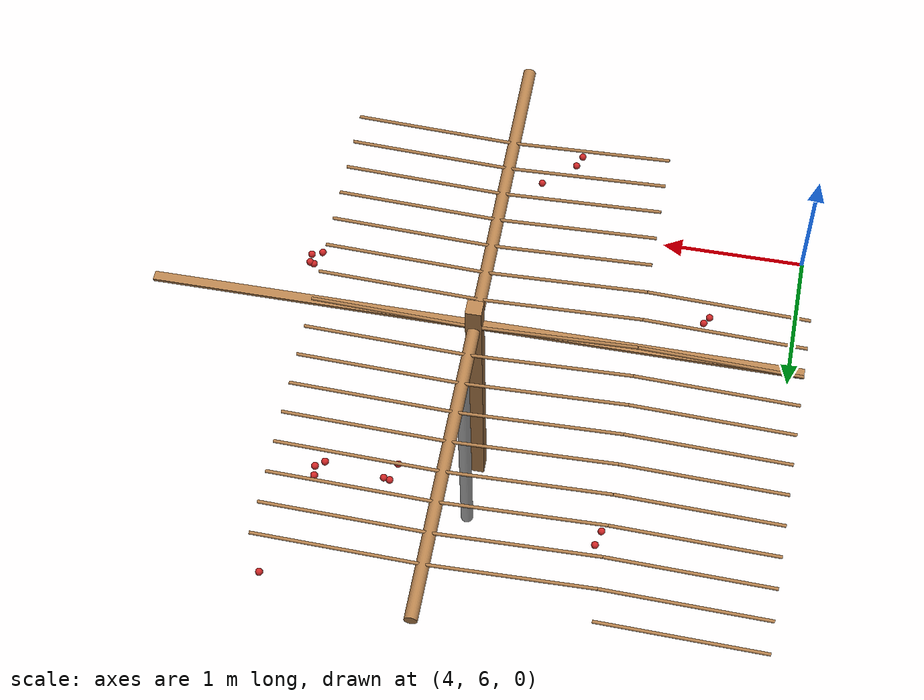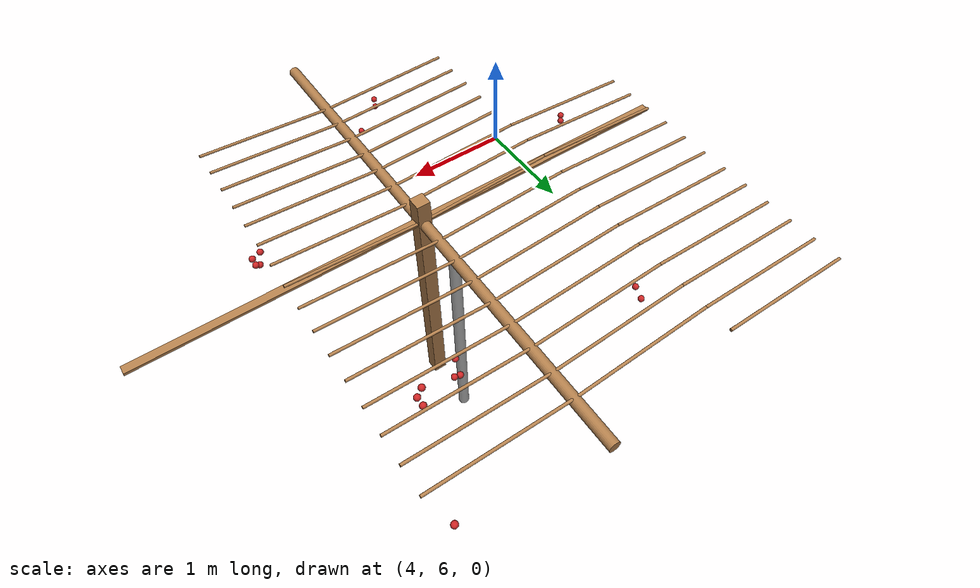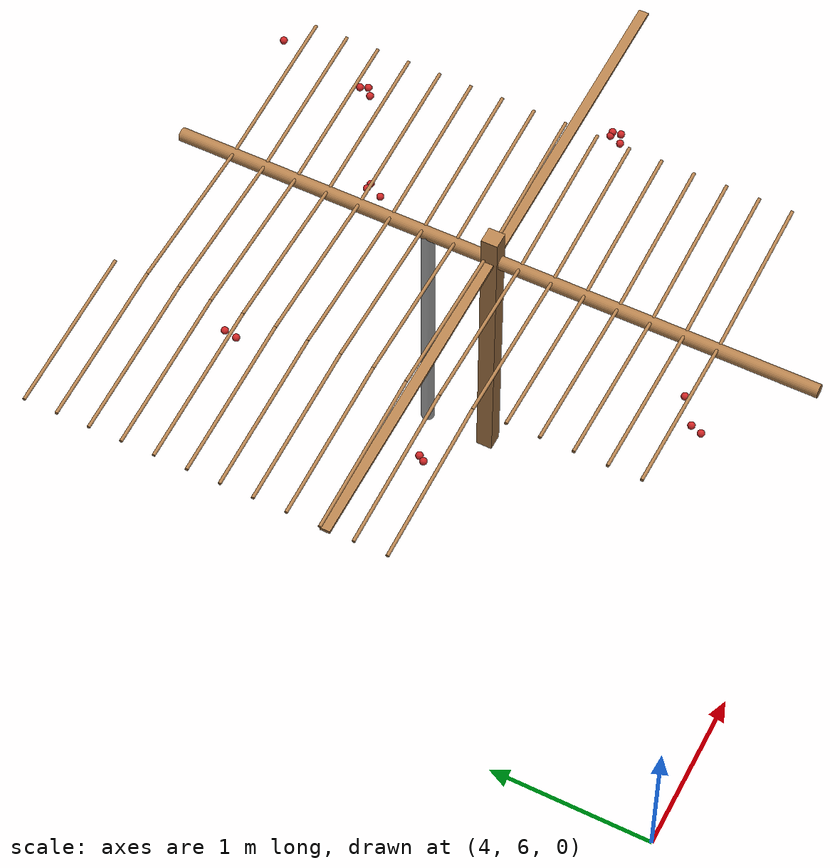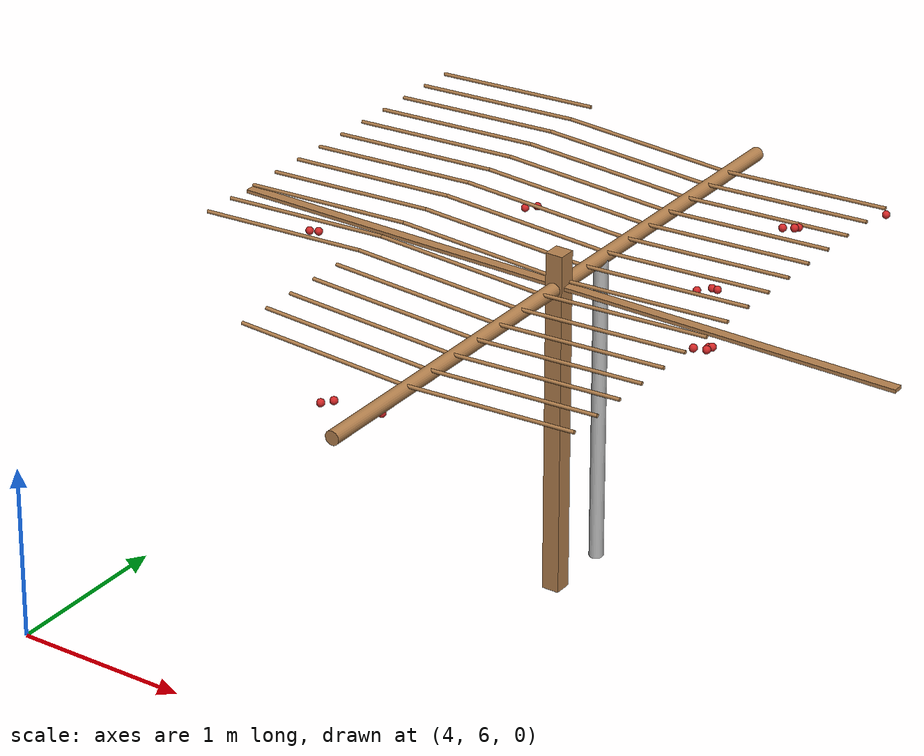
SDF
<sdf version="1.4">
 <model name="pergola">
  <include><name>post_37</name><pose>6.0 8.0 0 0 0 0</pose><uri>model://post</uri></include>
  <link name="beam_26">
   <pose>5.0 8.0 1.81 0 0 0</pose>
   <collision name="collision"><geometry><box><size>2.0 0.06 0.02</size></box></geometry></collision>
   <visual name="visual">
    <geometry><box><size>2.0 0.06 0.02</size></box></geometry>
    <material><script><name>Gazebo/Wood</name></script></material>
   </visual>
   <inertial>
    <mass>5</mass>
    <inertia>
     <ixx>0.0016666666666666668</ixx>
     <ixy>0.0</ixy>
     <ixz>0.0</ixz>
     <iyy>1.6681666666666664</iyy>
     <iyz>0.0</iyz>
     <izz>1.6668333333333332</izz>
    </inertia>
   </inertial>
  </link>
  <link name="beam_37">
   <pose>7.0 8.0 1.81 0 0 0</pose>
   <collision name="collision"><geometry><box><size>2.0 0.06 0.02</size></box></geometry></collision>
   <visual name="visual">
    <geometry><box><size>2.0 0.06 0.02</size></box></geometry>
    <material><script><name>Gazebo/Wood</name></script></material>
   </visual>
   <inertial>
    <mass>5</mass>
    <inertia>
     <ixx>0.0016666666666666668</ixx>
     <ixy>0.0</ixy>
     <ixz>0.0</ixz>
     <iyy>1.6681666666666664</iyy>
     <iyz>0.0</iyz>
     <izz>1.6668333333333332</izz>
    </inertia>
   </inertial>
  </link>
  <include><name>tree_34</name><pose>6.0 8.4 0 0 0 0</pose><uri>model://tree_trunk</uri></include>
  <link name="baseBranch_33">
   <pose>6.0 7.0 1.8 1.5707963267948966 0 0</pose>
   <collision name="collision">
    <geometry><cylinder><radius>0.04</radius><length>1.94</length></cylinder></geometry>
   </collision>
   <visual name="visual">
    <geometry><cylinder><radius>0.04</radius><length>1.94</length></cylinder></geometry>
    <material><script><name>Gazebo/WoodFloor</name></script></material>
   </visual>
   <inertial>
    <mass>10</mass>
    <inertia>
     <ixx>3.140333333333333</ixx>
     <ixy>0.0</ixy>
     <ixz>0.0</ixz>
     <iyy>3.140333333333333</iyy>
     <iyz>0.0</iyz>
     <izz>0.008</izz>
    </inertia>
   </inertial>
  </link>
  <link name="baseBranch_34">
   <pose>6.0 9.0 1.8 1.5707963267948966 0 0</pose>
   <collision name="collision">
    <geometry><cylinder><radius>0.04</radius><length>1.94</length></cylinder></geometry>
   </collision>
   <visual name="visual">
    <geometry><cylinder><radius>0.04</radius><length>1.94</length></cylinder></geometry>
    <material><script><name>Gazebo/WoodFloor</name></script></material>
   </visual>
   <inertial>
    <mass>10</mass>
    <inertia>
     <ixx>3.140333333333333</ixx>
     <ixy>0.0</ixy>
     <ixz>0.0</ixz>
     <iyy>3.140333333333333</iyy>
     <iyz>0.0</iyz>
     <izz>0.008</izz>
    </inertia>
   </inertial>
  </link>
  <link name="vine_467">
   <pose>5.5 6.630000000000001 1.85 0 -1.5208379310729538 0</pose>
   <collision name="collision">
    <geometry><cylinder><radius>0.01</radius><length>1.0012492197250393</length></cylinder></geometry>
   </collision>
   <visual name="visual">
    <geometry><cylinder><radius>0.01</radius><length>1.0012492197250393</length></cylinder></geometry>
    <material><script><name>Gazebo/WoodFloor</name></script></material>
   </visual>
   <inertial>
    <mass>5</mass>
    <inertia>
     <ixx>0.41783333333333345</ixx>
     <ixy>0.0</ixy>
     <ixz>0.0</ixz>
     <iyy>0.41783333333333345</iyy>
     <iyz>0.0</iyz>
     <izz>0.00025</izz>
    </inertia>
   </inertial>
  </link>
  <link name="vine_469">
   <pose>5.5 6.830000000000001 1.85 0 -1.5208379310729538 0</pose>
   <collision name="collision">
    <geometry><cylinder><radius>0.01</radius><length>1.0012492197250393</length></cylinder></geometry>
   </collision>
   <visual name="visual">
    <geometry><cylinder><radius>0.01</radius><length>1.0012492197250393</length></cylinder></geometry>
    <material><script><name>Gazebo/WoodFloor</name></script></material>
   </visual>
   <inertial>
    <mass>5</mass>
    <inertia>
     <ixx>0.41783333333333345</ixx>
     <ixy>0.0</ixy>
     <ixz>0.0</ixz>
     <iyy>0.41783333333333345</iyy>
     <iyz>0.0</iyz>
     <izz>0.00025</izz>
    </inertia>
   </inertial>
  </link>
  <link name="vine_471">
   <pose>5.5 7.03 1.85 0 -1.5208379310729538 0</pose>
   <collision name="collision">
    <geometry><cylinder><radius>0.01</radius><length>1.0012492197250393</length></cylinder></geometry>
   </collision>
   <visual name="visual">
    <geometry><cylinder><radius>0.01</radius><length>1.0012492197250393</length></cylinder></geometry>
    <material><script><name>Gazebo/WoodFloor</name></script></material>
   </visual>
   <inertial>
    <mass>5</mass>
    <inertia>
     <ixx>0.41783333333333345</ixx>
     <ixy>0.0</ixy>
     <ixz>0.0</ixz>
     <iyy>0.41783333333333345</iyy>
     <iyz>0.0</iyz>
     <izz>0.00025</izz>
    </inertia>
   </inertial>
  </link>
  <link name="vine_473">
   <pose>5.5 7.23 1.85 0 -1.5208379310729538 0</pose>
   <collision name="collision">
    <geometry><cylinder><radius>0.01</radius><length>1.0012492197250393</length></cylinder></geometry>
   </collision>
   <visual name="visual">
    <geometry><cylinder><radius>0.01</radius><length>1.0012492197250393</length></cylinder></geometry>
    <material><script><name>Gazebo/WoodFloor</name></script></material>
   </visual>
   <inertial>
    <mass>5</mass>
    <inertia>
     <ixx>0.41783333333333345</ixx>
     <ixy>0.0</ixy>
     <ixz>0.0</ixz>
     <iyy>0.41783333333333345</iyy>
     <iyz>0.0</iyz>
     <izz>0.00025</izz>
    </inertia>
   </inertial>
  </link>
  <link name="vine_475">
   <pose>5.5 7.430000000000001 1.85 0 -1.5208379310729538 0</pose>
   <collision name="collision">
    <geometry><cylinder><radius>0.01</radius><length>1.0012492197250393</length></cylinder></geometry>
   </collision>
   <visual name="visual">
    <geometry><cylinder><radius>0.01</radius><length>1.0012492197250393</length></cylinder></geometry>
    <material><script><name>Gazebo/WoodFloor</name></script></material>
   </visual>
   <inertial>
    <mass>5</mass>
    <inertia>
     <ixx>0.41783333333333345</ixx>
     <ixy>0.0</ixy>
     <ixz>0.0</ixz>
     <iyy>0.41783333333333345</iyy>
     <iyz>0.0</iyz>
     <izz>0.00025</izz>
    </inertia>
   </inertial>
  </link>
  <link name="vine_476">
   <pose>4.5 7.630000000000001 1.85 0 1.5208379310729538 0</pose>
   <collision name="collision">
    <geometry><cylinder><radius>0.01</radius><length>1.0012492197250393</length></cylinder></geometry>
   </collision>
   <visual name="visual">
    <geometry><cylinder><radius>0.01</radius><length>1.0012492197250393</length></cylinder></geometry>
    <material><script><name>Gazebo/WoodFloor</name></script></material>
   </visual>
   <inertial>
    <mass>5</mass>
    <inertia>
     <ixx>0.41783333333333345</ixx>
     <ixy>0.0</ixy>
     <ixz>0.0</ixz>
     <iyy>0.41783333333333345</iyy>
     <iyz>0.0</iyz>
     <izz>0.00025</izz>
    </inertia>
   </inertial>
  </link>
  <link name="vine_477">
   <pose>5.5 7.630000000000001 1.85 0 -1.5208379310729538 0</pose>
   <collision name="collision">
    <geometry><cylinder><radius>0.01</radius><length>1.0012492197250393</length></cylinder></geometry>
   </collision>
   <visual name="visual">
    <geometry><cylinder><radius>0.01</radius><length>1.0012492197250393</length></cylinder></geometry>
    <material><script><name>Gazebo/WoodFloor</name></script></material>
   </visual>
   <inertial>
    <mass>5</mass>
    <inertia>
     <ixx>0.41783333333333345</ixx>
     <ixy>0.0</ixy>
     <ixz>0.0</ixz>
     <iyy>0.41783333333333345</iyy>
     <iyz>0.0</iyz>
     <izz>0.00025</izz>
    </inertia>
   </inertial>
  </link>
  <link name="vine_478">
   <pose>4.5 7.830000000000001 1.85 0 1.5208379310729538 0</pose>
   <collision name="collision">
    <geometry><cylinder><radius>0.01</radius><length>1.0012492197250393</length></cylinder></geometry>
   </collision>
   <visual name="visual">
    <geometry><cylinder><radius>0.01</radius><length>1.0012492197250393</length></cylinder></geometry>
    <material><script><name>Gazebo/WoodFloor</name></script></material>
   </visual>
   <inertial>
    <mass>5</mass>
    <inertia>
     <ixx>0.41783333333333345</ixx>
     <ixy>0.0</ixy>
     <ixz>0.0</ixz>
     <iyy>0.41783333333333345</iyy>
     <iyz>0.0</iyz>
     <izz>0.00025</izz>
    </inertia>
   </inertial>
  </link>
  <link name="vine_479">
   <pose>5.5 7.830000000000001 1.85 0 -1.5208379310729538 0</pose>
   <collision name="collision">
    <geometry><cylinder><radius>0.01</radius><length>1.0012492197250393</length></cylinder></geometry>
   </collision>
   <visual name="visual">
    <geometry><cylinder><radius>0.01</radius><length>1.0012492197250393</length></cylinder></geometry>
    <material><script><name>Gazebo/WoodFloor</name></script></material>
   </visual>
   <inertial>
    <mass>5</mass>
    <inertia>
     <ixx>0.41783333333333345</ixx>
     <ixy>0.0</ixy>
     <ixz>0.0</ixz>
     <iyy>0.41783333333333345</iyy>
     <iyz>0.0</iyz>
     <izz>0.00025</izz>
    </inertia>
   </inertial>
  </link>
  <link name="vine_480">
   <pose>4.5 8.03 1.85 0 1.5208379310729538 0</pose>
   <collision name="collision">
    <geometry><cylinder><radius>0.01</radius><length>1.0012492197250393</length></cylinder></geometry>
   </collision>
   <visual name="visual">
    <geometry><cylinder><radius>0.01</radius><length>1.0012492197250393</length></cylinder></geometry>
    <material><script><name>Gazebo/WoodFloor</name></script></material>
   </visual>
   <inertial>
    <mass>5</mass>
    <inertia>
     <ixx>0.41783333333333345</ixx>
     <ixy>0.0</ixy>
     <ixz>0.0</ixz>
     <iyy>0.41783333333333345</iyy>
     <iyz>0.0</iyz>
     <izz>0.00025</izz>
    </inertia>
   </inertial>
  </link>
  <link name="vine_481">
   <pose>5.5 8.03 1.85 0 -1.5208379310729538 0</pose>
   <collision name="collision">
    <geometry><cylinder><radius>0.01</radius><length>1.0012492197250393</length></cylinder></geometry>
   </collision>
   <visual name="visual">
    <geometry><cylinder><radius>0.01</radius><length>1.0012492197250393</length></cylinder></geometry>
    <material><script><name>Gazebo/WoodFloor</name></script></material>
   </visual>
   <inertial>
    <mass>5</mass>
    <inertia>
     <ixx>0.41783333333333345</ixx>
     <ixy>0.0</ixy>
     <ixz>0.0</ixz>
     <iyy>0.41783333333333345</iyy>
     <iyz>0.0</iyz>
     <izz>0.00025</izz>
    </inertia>
   </inertial>
  </link>
  <link name="vine_482">
   <pose>4.5 8.23 1.85 0 1.5208379310729538 0</pose>
   <collision name="collision">
    <geometry><cylinder><radius>0.01</radius><length>1.0012492197250393</length></cylinder></geometry>
   </collision>
   <visual name="visual">
    <geometry><cylinder><radius>0.01</radius><length>1.0012492197250393</length></cylinder></geometry>
    <material><script><name>Gazebo/WoodFloor</name></script></material>
   </visual>
   <inertial>
    <mass>5</mass>
    <inertia>
     <ixx>0.41783333333333345</ixx>
     <ixy>0.0</ixy>
     <ixz>0.0</ixz>
     <iyy>0.41783333333333345</iyy>
     <iyz>0.0</iyz>
     <izz>0.00025</izz>
    </inertia>
   </inertial>
  </link>
  <link name="vine_483">
   <pose>5.5 8.23 1.85 0 -1.5208379310729538 0</pose>
   <collision name="collision">
    <geometry><cylinder><radius>0.01</radius><length>1.0012492197250393</length></cylinder></geometry>
   </collision>
   <visual name="visual">
    <geometry><cylinder><radius>0.01</radius><length>1.0012492197250393</length></cylinder></geometry>
    <material><script><name>Gazebo/WoodFloor</name></script></material>
   </visual>
   <inertial>
    <mass>5</mass>
    <inertia>
     <ixx>0.41783333333333345</ixx>
     <ixy>0.0</ixy>
     <ixz>0.0</ixz>
     <iyy>0.41783333333333345</iyy>
     <iyz>0.0</iyz>
     <izz>0.00025</izz>
    </inertia>
   </inertial>
  </link>
  <link name="vine_484">
   <pose>4.5 8.43 1.85 0 1.5208379310729538 0</pose>
   <collision name="collision">
    <geometry><cylinder><radius>0.01</radius><length>1.0012492197250393</length></cylinder></geometry>
   </collision>
   <visual name="visual">
    <geometry><cylinder><radius>0.01</radius><length>1.0012492197250393</length></cylinder></geometry>
    <material><script><name>Gazebo/WoodFloor</name></script></material>
   </visual>
   <inertial>
    <mass>5</mass>
    <inertia>
     <ixx>0.41783333333333345</ixx>
     <ixy>0.0</ixy>
     <ixz>0.0</ixz>
     <iyy>0.41783333333333345</iyy>
     <iyz>0.0</iyz>
     <izz>0.00025</izz>
    </inertia>
   </inertial>
  </link>
  <link name="vine_485">
   <pose>5.5 8.43 1.85 0 -1.5208379310729538 0</pose>
   <collision name="collision">
    <geometry><cylinder><radius>0.01</radius><length>1.0012492197250393</length></cylinder></geometry>
   </collision>
   <visual name="visual">
    <geometry><cylinder><radius>0.01</radius><length>1.0012492197250393</length></cylinder></geometry>
    <material><script><name>Gazebo/WoodFloor</name></script></material>
   </visual>
   <inertial>
    <mass>5</mass>
    <inertia>
     <ixx>0.41783333333333345</ixx>
     <ixy>0.0</ixy>
     <ixz>0.0</ixz>
     <iyy>0.41783333333333345</iyy>
     <iyz>0.0</iyz>
     <izz>0.00025</izz>
    </inertia>
   </inertial>
  </link>
  <link name="vine_486">
   <pose>4.5 8.629999999999999 1.85 0 1.5208379310729538 0</pose>
   <collision name="collision">
    <geometry><cylinder><radius>0.01</radius><length>1.0012492197250393</length></cylinder></geometry>
   </collision>
   <visual name="visual">
    <geometry><cylinder><radius>0.01</radius><length>1.0012492197250393</length></cylinder></geometry>
    <material><script><name>Gazebo/WoodFloor</name></script></material>
   </visual>
   <inertial>
    <mass>5</mass>
    <inertia>
     <ixx>0.41783333333333345</ixx>
     <ixy>0.0</ixy>
     <ixz>0.0</ixz>
     <iyy>0.41783333333333345</iyy>
     <iyz>0.0</iyz>
     <izz>0.00025</izz>
    </inertia>
   </inertial>
  </link>
  <link name="vine_487">
   <pose>5.5 8.629999999999999 1.85 0 -1.5208379310729538 0</pose>
   <collision name="collision">
    <geometry><cylinder><radius>0.01</radius><length>1.0012492197250393</length></cylinder></geometry>
   </collision>
   <visual name="visual">
    <geometry><cylinder><radius>0.01</radius><length>1.0012492197250393</length></cylinder></geometry>
    <material><script><name>Gazebo/WoodFloor</name></script></material>
   </visual>
   <inertial>
    <mass>5</mass>
    <inertia>
     <ixx>0.41783333333333345</ixx>
     <ixy>0.0</ixy>
     <ixz>0.0</ixz>
     <iyy>0.41783333333333345</iyy>
     <iyz>0.0</iyz>
     <izz>0.00025</izz>
    </inertia>
   </inertial>
  </link>
  <link name="vine_488">
   <pose>4.5 8.83 1.85 0 1.5208379310729538 0</pose>
   <collision name="collision">
    <geometry><cylinder><radius>0.01</radius><length>1.0012492197250393</length></cylinder></geometry>
   </collision>
   <visual name="visual">
    <geometry><cylinder><radius>0.01</radius><length>1.0012492197250393</length></cylinder></geometry>
    <material><script><name>Gazebo/WoodFloor</name></script></material>
   </visual>
   <inertial>
    <mass>5</mass>
    <inertia>
     <ixx>0.41783333333333345</ixx>
     <ixy>0.0</ixy>
     <ixz>0.0</ixz>
     <iyy>0.41783333333333345</iyy>
     <iyz>0.0</iyz>
     <izz>0.00025</izz>
    </inertia>
   </inertial>
  </link>
  <link name="vine_489">
   <pose>5.5 8.83 1.85 0 -1.5208379310729538 0</pose>
   <collision name="collision">
    <geometry><cylinder><radius>0.01</radius><length>1.0012492197250393</length></cylinder></geometry>
   </collision>
   <visual name="visual">
    <geometry><cylinder><radius>0.01</radius><length>1.0012492197250393</length></cylinder></geometry>
    <material><script><name>Gazebo/WoodFloor</name></script></material>
   </visual>
   <inertial>
    <mass>5</mass>
    <inertia>
     <ixx>0.41783333333333345</ixx>
     <ixy>0.0</ixy>
     <ixz>0.0</ixz>
     <iyy>0.41783333333333345</iyy>
     <iyz>0.0</iyz>
     <izz>0.00025</izz>
    </inertia>
   </inertial>
  </link>
  <link name="vine_490">
   <pose>4.5 9.03 1.85 0 1.5208379310729538 0</pose>
   <collision name="collision">
    <geometry><cylinder><radius>0.01</radius><length>1.0012492197250393</length></cylinder></geometry>
   </collision>
   <visual name="visual">
    <geometry><cylinder><radius>0.01</radius><length>1.0012492197250393</length></cylinder></geometry>
    <material><script><name>Gazebo/WoodFloor</name></script></material>
   </visual>
   <inertial>
    <mass>5</mass>
    <inertia>
     <ixx>0.41783333333333345</ixx>
     <ixy>0.0</ixy>
     <ixz>0.0</ixz>
     <iyy>0.41783333333333345</iyy>
     <iyz>0.0</iyz>
     <izz>0.00025</izz>
    </inertia>
   </inertial>
  </link>
  <link name="vine_491">
   <pose>5.5 9.03 1.85 0 -1.5208379310729538 0</pose>
   <collision name="collision">
    <geometry><cylinder><radius>0.01</radius><length>1.0012492197250393</length></cylinder></geometry>
   </collision>
   <visual name="visual">
    <geometry><cylinder><radius>0.01</radius><length>1.0012492197250393</length></cylinder></geometry>
    <material><script><name>Gazebo/WoodFloor</name></script></material>
   </visual>
   <inertial>
    <mass>5</mass>
    <inertia>
     <ixx>0.41783333333333345</ixx>
     <ixy>0.0</ixy>
     <ixz>0.0</ixz>
     <iyy>0.41783333333333345</iyy>
     <iyz>0.0</iyz>
     <izz>0.00025</izz>
    </inertia>
   </inertial>
  </link>
  <link name="vine_492">
   <pose>4.5 9.23 1.85 0 1.5208379310729538 0</pose>
   <collision name="collision">
    <geometry><cylinder><radius>0.01</radius><length>1.0012492197250393</length></cylinder></geometry>
   </collision>
   <visual name="visual">
    <geometry><cylinder><radius>0.01</radius><length>1.0012492197250393</length></cylinder></geometry>
    <material><script><name>Gazebo/WoodFloor</name></script></material>
   </visual>
   <inertial>
    <mass>5</mass>
    <inertia>
     <ixx>0.41783333333333345</ixx>
     <ixy>0.0</ixy>
     <ixz>0.0</ixz>
     <iyy>0.41783333333333345</iyy>
     <iyz>0.0</iyz>
     <izz>0.00025</izz>
    </inertia>
   </inertial>
  </link>
  <link name="vine_493">
   <pose>5.5 9.23 1.85 0 -1.5208379310729538 0</pose>
   <collision name="collision">
    <geometry><cylinder><radius>0.01</radius><length>1.0012492197250393</length></cylinder></geometry>
   </collision>
   <visual name="visual">
    <geometry><cylinder><radius>0.01</radius><length>1.0012492197250393</length></cylinder></geometry>
    <material><script><name>Gazebo/WoodFloor</name></script></material>
   </visual>
   <inertial>
    <mass>5</mass>
    <inertia>
     <ixx>0.41783333333333345</ixx>
     <ixy>0.0</ixy>
     <ixz>0.0</ixz>
     <iyy>0.41783333333333345</iyy>
     <iyz>0.0</iyz>
     <izz>0.00025</izz>
    </inertia>
   </inertial>
  </link>
  <link name="vine_494">
   <pose>4.5 9.43 1.85 0 1.5208379310729538 0</pose>
   <collision name="collision">
    <geometry><cylinder><radius>0.01</radius><length>1.0012492197250393</length></cylinder></geometry>
   </collision>
   <visual name="visual">
    <geometry><cylinder><radius>0.01</radius><length>1.0012492197250393</length></cylinder></geometry>
    <material><script><name>Gazebo/WoodFloor</name></script></material>
   </visual>
   <inertial>
    <mass>5</mass>
    <inertia>
     <ixx>0.41783333333333345</ixx>
     <ixy>0.0</ixy>
     <ixz>0.0</ixz>
     <iyy>0.41783333333333345</iyy>
     <iyz>0.0</iyz>
     <izz>0.00025</izz>
    </inertia>
   </inertial>
  </link>
  <link name="vine_495">
   <pose>5.5 9.43 1.85 0 -1.5208379310729538 0</pose>
   <collision name="collision">
    <geometry><cylinder><radius>0.01</radius><length>1.0012492197250393</length></cylinder></geometry>
   </collision>
   <visual name="visual">
    <geometry><cylinder><radius>0.01</radius><length>1.0012492197250393</length></cylinder></geometry>
    <material><script><name>Gazebo/WoodFloor</name></script></material>
   </visual>
   <inertial>
    <mass>5</mass>
    <inertia>
     <ixx>0.41783333333333345</ixx>
     <ixy>0.0</ixy>
     <ixz>0.0</ixz>
     <iyy>0.41783333333333345</iyy>
     <iyz>0.0</iyz>
     <izz>0.00025</izz>
    </inertia>
   </inertial>
  </link>
  <link name="vine_496">
   <pose>4.5 9.63 1.85 0 1.5208379310729538 0</pose>
   <collision name="collision">
    <geometry><cylinder><radius>0.01</radius><length>1.0012492197250393</length></cylinder></geometry>
   </collision>
   <visual name="visual">
    <geometry><cylinder><radius>0.01</radius><length>1.0012492197250393</length></cylinder></geometry>
    <material><script><name>Gazebo/WoodFloor</name></script></material>
   </visual>
   <inertial>
    <mass>5</mass>
    <inertia>
     <ixx>0.41783333333333345</ixx>
     <ixy>0.0</ixy>
     <ixz>0.0</ixz>
     <iyy>0.41783333333333345</iyy>
     <iyz>0.0</iyz>
     <izz>0.00025</izz>
    </inertia>
   </inertial>
  </link>
  <link name="vine_497">
   <pose>5.5 9.63 1.85 0 -1.5208379310729538 0</pose>
   <collision name="collision">
    <geometry><cylinder><radius>0.01</radius><length>1.0012492197250393</length></cylinder></geometry>
   </collision>
   <visual name="visual">
    <geometry><cylinder><radius>0.01</radius><length>1.0012492197250393</length></cylinder></geometry>
    <material><script><name>Gazebo/WoodFloor</name></script></material>
   </visual>
   <inertial>
    <mass>5</mass>
    <inertia>
     <ixx>0.41783333333333345</ixx>
     <ixy>0.0</ixy>
     <ixz>0.0</ixz>
     <iyy>0.41783333333333345</iyy>
     <iyz>0.0</iyz>
     <izz>0.00025</izz>
    </inertia>
   </inertial>
  </link>
  <link name="vine_498">
   <pose>4.5 9.83 1.85 0 1.5208379310729538 0</pose>
   <collision name="collision">
    <geometry><cylinder><radius>0.01</radius><length>1.0012492197250393</length></cylinder></geometry>
   </collision>
   <visual name="visual">
    <geometry><cylinder><radius>0.01</radius><length>1.0012492197250393</length></cylinder></geometry>
    <material><script><name>Gazebo/WoodFloor</name></script></material>
   </visual>
   <inertial>
    <mass>5</mass>
    <inertia>
     <ixx>0.41783333333333345</ixx>
     <ixy>0.0</ixy>
     <ixz>0.0</ixz>
     <iyy>0.41783333333333345</iyy>
     <iyz>0.0</iyz>
     <izz>0.00025</izz>
    </inertia>
   </inertial>
  </link>
  <link name="vine_666">
   <pose>6.5 6.630000000000001 1.85 0 1.5208379310729538 0</pose>
   <collision name="collision">
    <geometry><cylinder><radius>0.01</radius><length>1.0012492197250393</length></cylinder></geometry>
   </collision>
   <visual name="visual">
    <geometry><cylinder><radius>0.01</radius><length>1.0012492197250393</length></cylinder></geometry>
    <material><script><name>Gazebo/WoodFloor</name></script></material>
   </visual>
   <inertial>
    <mass>5</mass>
    <inertia>
     <ixx>0.41783333333333345</ixx>
     <ixy>0.0</ixy>
     <ixz>0.0</ixz>
     <iyy>0.41783333333333345</iyy>
     <iyz>0.0</iyz>
     <izz>0.00025</izz>
    </inertia>
   </inertial>
  </link>
  <link name="vine_668">
   <pose>6.5 6.830000000000001 1.85 0 1.5208379310729538 0</pose>
   <collision name="collision">
    <geometry><cylinder><radius>0.01</radius><length>1.0012492197250393</length></cylinder></geometry>
   </collision>
   <visual name="visual">
    <geometry><cylinder><radius>0.01</radius><length>1.0012492197250393</length></cylinder></geometry>
    <material><script><name>Gazebo/WoodFloor</name></script></material>
   </visual>
   <inertial>
    <mass>5</mass>
    <inertia>
     <ixx>0.41783333333333345</ixx>
     <ixy>0.0</ixy>
     <ixz>0.0</ixz>
     <iyy>0.41783333333333345</iyy>
     <iyz>0.0</iyz>
     <izz>0.00025</izz>
    </inertia>
   </inertial>
  </link>
  <link name="vine_670">
   <pose>6.5 7.03 1.85 0 1.5208379310729538 0</pose>
   <collision name="collision">
    <geometry><cylinder><radius>0.01</radius><length>1.0012492197250393</length></cylinder></geometry>
   </collision>
   <visual name="visual">
    <geometry><cylinder><radius>0.01</radius><length>1.0012492197250393</length></cylinder></geometry>
    <material><script><name>Gazebo/WoodFloor</name></script></material>
   </visual>
   <inertial>
    <mass>5</mass>
    <inertia>
     <ixx>0.41783333333333345</ixx>
     <ixy>0.0</ixy>
     <ixz>0.0</ixz>
     <iyy>0.41783333333333345</iyy>
     <iyz>0.0</iyz>
     <izz>0.00025</izz>
    </inertia>
   </inertial>
  </link>
  <link name="vine_672">
   <pose>6.5 7.23 1.85 0 1.5208379310729538 0</pose>
   <collision name="collision">
    <geometry><cylinder><radius>0.01</radius><length>1.0012492197250393</length></cylinder></geometry>
   </collision>
   <visual name="visual">
    <geometry><cylinder><radius>0.01</radius><length>1.0012492197250393</length></cylinder></geometry>
    <material><script><name>Gazebo/WoodFloor</name></script></material>
   </visual>
   <inertial>
    <mass>5</mass>
    <inertia>
     <ixx>0.41783333333333345</ixx>
     <ixy>0.0</ixy>
     <ixz>0.0</ixz>
     <iyy>0.41783333333333345</iyy>
     <iyz>0.0</iyz>
     <izz>0.00025</izz>
    </inertia>
   </inertial>
  </link>
  <link name="vine_674">
   <pose>6.5 7.430000000000001 1.85 0 1.5208379310729538 0</pose>
   <collision name="collision">
    <geometry><cylinder><radius>0.01</radius><length>1.0012492197250393</length></cylinder></geometry>
   </collision>
   <visual name="visual">
    <geometry><cylinder><radius>0.01</radius><length>1.0012492197250393</length></cylinder></geometry>
    <material><script><name>Gazebo/WoodFloor</name></script></material>
   </visual>
   <inertial>
    <mass>5</mass>
    <inertia>
     <ixx>0.41783333333333345</ixx>
     <ixy>0.0</ixy>
     <ixz>0.0</ixz>
     <iyy>0.41783333333333345</iyy>
     <iyz>0.0</iyz>
     <izz>0.00025</izz>
    </inertia>
   </inertial>
  </link>
  <link name="vine_676">
   <pose>6.5 7.630000000000001 1.85 0 1.5208379310729538 0</pose>
   <collision name="collision">
    <geometry><cylinder><radius>0.01</radius><length>1.0012492197250393</length></cylinder></geometry>
   </collision>
   <visual name="visual">
    <geometry><cylinder><radius>0.01</radius><length>1.0012492197250393</length></cylinder></geometry>
    <material><script><name>Gazebo/WoodFloor</name></script></material>
   </visual>
   <inertial>
    <mass>5</mass>
    <inertia>
     <ixx>0.41783333333333345</ixx>
     <ixy>0.0</ixy>
     <ixz>0.0</ixz>
     <iyy>0.41783333333333345</iyy>
     <iyz>0.0</iyz>
     <izz>0.00025</izz>
    </inertia>
   </inertial>
  </link>
  <link name="vine_678">
   <pose>6.5 7.830000000000001 1.85 0 1.5208379310729538 0</pose>
   <collision name="collision">
    <geometry><cylinder><radius>0.01</radius><length>1.0012492197250393</length></cylinder></geometry>
   </collision>
   <visual name="visual">
    <geometry><cylinder><radius>0.01</radius><length>1.0012492197250393</length></cylinder></geometry>
    <material><script><name>Gazebo/WoodFloor</name></script></material>
   </visual>
   <inertial>
    <mass>5</mass>
    <inertia>
     <ixx>0.41783333333333345</ixx>
     <ixy>0.0</ixy>
     <ixz>0.0</ixz>
     <iyy>0.41783333333333345</iyy>
     <iyz>0.0</iyz>
     <izz>0.00025</izz>
    </inertia>
   </inertial>
  </link>
  <link name="vine_680">
   <pose>6.5 8.03 1.85 0 1.5208379310729538 0</pose>
   <collision name="collision">
    <geometry><cylinder><radius>0.01</radius><length>1.0012492197250393</length></cylinder></geometry>
   </collision>
   <visual name="visual">
    <geometry><cylinder><radius>0.01</radius><length>1.0012492197250393</length></cylinder></geometry>
    <material><script><name>Gazebo/WoodFloor</name></script></material>
   </visual>
   <inertial>
    <mass>5</mass>
    <inertia>
     <ixx>0.41783333333333345</ixx>
     <ixy>0.0</ixy>
     <ixz>0.0</ixz>
     <iyy>0.41783333333333345</iyy>
     <iyz>0.0</iyz>
     <izz>0.00025</izz>
    </inertia>
   </inertial>
  </link>
  <link name="vine_682">
   <pose>6.5 8.23 1.85 0 1.5208379310729538 0</pose>
   <collision name="collision">
    <geometry><cylinder><radius>0.01</radius><length>1.0012492197250393</length></cylinder></geometry>
   </collision>
   <visual name="visual">
    <geometry><cylinder><radius>0.01</radius><length>1.0012492197250393</length></cylinder></geometry>
    <material><script><name>Gazebo/WoodFloor</name></script></material>
   </visual>
   <inertial>
    <mass>5</mass>
    <inertia>
     <ixx>0.41783333333333345</ixx>
     <ixy>0.0</ixy>
     <ixz>0.0</ixz>
     <iyy>0.41783333333333345</iyy>
     <iyz>0.0</iyz>
     <izz>0.00025</izz>
    </inertia>
   </inertial>
  </link>
  <link name="vine_684">
   <pose>6.5 8.43 1.85 0 1.5208379310729538 0</pose>
   <collision name="collision">
    <geometry><cylinder><radius>0.01</radius><length>1.0012492197250393</length></cylinder></geometry>
   </collision>
   <visual name="visual">
    <geometry><cylinder><radius>0.01</radius><length>1.0012492197250393</length></cylinder></geometry>
    <material><script><name>Gazebo/WoodFloor</name></script></material>
   </visual>
   <inertial>
    <mass>5</mass>
    <inertia>
     <ixx>0.41783333333333345</ixx>
     <ixy>0.0</ixy>
     <ixz>0.0</ixz>
     <iyy>0.41783333333333345</iyy>
     <iyz>0.0</iyz>
     <izz>0.00025</izz>
    </inertia>
   </inertial>
  </link>
  <link name="vine_686">
   <pose>6.5 8.629999999999999 1.85 0 1.5208379310729538 0</pose>
   <collision name="collision">
    <geometry><cylinder><radius>0.01</radius><length>1.0012492197250393</length></cylinder></geometry>
   </collision>
   <visual name="visual">
    <geometry><cylinder><radius>0.01</radius><length>1.0012492197250393</length></cylinder></geometry>
    <material><script><name>Gazebo/WoodFloor</name></script></material>
   </visual>
   <inertial>
    <mass>5</mass>
    <inertia>
     <ixx>0.41783333333333345</ixx>
     <ixy>0.0</ixy>
     <ixz>0.0</ixz>
     <iyy>0.41783333333333345</iyy>
     <iyz>0.0</iyz>
     <izz>0.00025</izz>
    </inertia>
   </inertial>
  </link>
  <link name="vine_688">
   <pose>6.5 8.83 1.85 0 1.5208379310729538 0</pose>
   <collision name="collision">
    <geometry><cylinder><radius>0.01</radius><length>1.0012492197250393</length></cylinder></geometry>
   </collision>
   <visual name="visual">
    <geometry><cylinder><radius>0.01</radius><length>1.0012492197250393</length></cylinder></geometry>
    <material><script><name>Gazebo/WoodFloor</name></script></material>
   </visual>
   <inertial>
    <mass>5</mass>
    <inertia>
     <ixx>0.41783333333333345</ixx>
     <ixy>0.0</ixy>
     <ixz>0.0</ixz>
     <iyy>0.41783333333333345</iyy>
     <iyz>0.0</iyz>
     <izz>0.00025</izz>
    </inertia>
   </inertial>
  </link>
  <link name="vine_690">
   <pose>6.5 9.03 1.85 0 1.5208379310729538 0</pose>
   <collision name="collision">
    <geometry><cylinder><radius>0.01</radius><length>1.0012492197250393</length></cylinder></geometry>
   </collision>
   <visual name="visual">
    <geometry><cylinder><radius>0.01</radius><length>1.0012492197250393</length></cylinder></geometry>
    <material><script><name>Gazebo/WoodFloor</name></script></material>
   </visual>
   <inertial>
    <mass>5</mass>
    <inertia>
     <ixx>0.41783333333333345</ixx>
     <ixy>0.0</ixy>
     <ixz>0.0</ixz>
     <iyy>0.41783333333333345</iyy>
     <iyz>0.0</iyz>
     <izz>0.00025</izz>
    </inertia>
   </inertial>
  </link>
  <link name="vine_692">
   <pose>6.5 9.23 1.85 0 1.5208379310729538 0</pose>
   <collision name="collision">
    <geometry><cylinder><radius>0.01</radius><length>1.0012492197250393</length></cylinder></geometry>
   </collision>
   <visual name="visual">
    <geometry><cylinder><radius>0.01</radius><length>1.0012492197250393</length></cylinder></geometry>
    <material><script><name>Gazebo/WoodFloor</name></script></material>
   </visual>
   <inertial>
    <mass>5</mass>
    <inertia>
     <ixx>0.41783333333333345</ixx>
     <ixy>0.0</ixy>
     <ixz>0.0</ixz>
     <iyy>0.41783333333333345</iyy>
     <iyz>0.0</iyz>
     <izz>0.00025</izz>
    </inertia>
   </inertial>
  </link>
  <link name="vine_694">
   <pose>6.5 9.43 1.85 0 1.5208379310729538 0</pose>
   <collision name="collision">
    <geometry><cylinder><radius>0.01</radius><length>1.0012492197250393</length></cylinder></geometry>
   </collision>
   <visual name="visual">
    <geometry><cylinder><radius>0.01</radius><length>1.0012492197250393</length></cylinder></geometry>
    <material><script><name>Gazebo/WoodFloor</name></script></material>
   </visual>
   <inertial>
    <mass>5</mass>
    <inertia>
     <ixx>0.41783333333333345</ixx>
     <ixy>0.0</ixy>
     <ixz>0.0</ixz>
     <iyy>0.41783333333333345</iyy>
     <iyz>0.0</iyz>
     <izz>0.00025</izz>
    </inertia>
   </inertial>
  </link>
  <link name="vine_696">
   <pose>6.5 9.63 1.85 0 1.5208379310729538 0</pose>
   <collision name="collision">
    <geometry><cylinder><radius>0.01</radius><length>1.0012492197250393</length></cylinder></geometry>
   </collision>
   <visual name="visual">
    <geometry><cylinder><radius>0.01</radius><length>1.0012492197250393</length></cylinder></geometry>
    <material><script><name>Gazebo/WoodFloor</name></script></material>
   </visual>
   <inertial>
    <mass>5</mass>
    <inertia>
     <ixx>0.41783333333333345</ixx>
     <ixy>0.0</ixy>
     <ixz>0.0</ixz>
     <iyy>0.41783333333333345</iyy>
     <iyz>0.0</iyz>
     <izz>0.00025</izz>
    </inertia>
   </inertial>
  </link>
  <link name="fruit_47">
   <pose>5.04316309671567 9.11090713850481 1.5463846599088762 0 0 0</pose>
   <collision name="fruit_collision_47"><geometry><sphere><radius>0.022</radius></sphere></geometry></collision>
   <visual name="visual">
    <geometry><sphere><radius>0.022</radius></sphere></geometry>
    <material><script><name>Gazebo/Red</name></script></material>
   </visual>
   <inertial>
    <mass>0.05</mass>
    <inertia>
     <ixx>9.679999999999999e-06</ixx>
     <ixy>0.0</ixy>
     <ixz>0.0</ixz>
     <iyy>9.679999999999999e-06</iyy>
     <iyz>0.0</iyz>
     <izz>9.679999999999999e-06</izz>
    </inertia>
   </inertial>
   <sensor name="fruit_contact_47" type="contact">
    <contact><collision>fruit_collision_47</collision></contact>
   </sensor>
  </link>
  <link name="fruit_128">
   <pose>6.67373246448841 9.111405278500841 1.8774257948233817 0 0 0</pose>
   <collision name="fruit_collision_128"><geometry><sphere><radius>0.022</radius></sphere></geometry></collision>
   <visual name="visual">
    <geometry><sphere><radius>0.022</radius></sphere></geometry>
    <material><script><name>Gazebo/Red</name></script></material>
   </visual>
   <inertial>
    <mass>0.05</mass>
    <inertia>
     <ixx>9.679999999999999e-06</ixx>
     <ixy>0.0</ixy>
     <ixz>0.0</ixz>
     <iyy>9.679999999999999e-06</iyy>
     <iyz>0.0</iyz>
     <izz>9.679999999999999e-06</izz>
    </inertia>
   </inertial>
   <sensor name="fruit_contact_128" type="contact">
    <contact><collision>fruit_collision_128</collision></contact>
   </sensor>
  </link>
  <link name="fruit_165">
   <pose>6.309291003038095 8.863232230233216 1.5059784597840715 0 0 0</pose>
   <collision name="fruit_collision_165"><geometry><sphere><radius>0.022</radius></sphere></geometry></collision>
   <visual name="visual">
    <geometry><sphere><radius>0.022</radius></sphere></geometry>
    <material><script><name>Gazebo/Red</name></script></material>
   </visual>
   <inertial>
    <mass>0.05</mass>
    <inertia>
     <ixx>9.679999999999999e-06</ixx>
     <ixy>0.0</ixy>
     <ixz>0.0</ixz>
     <iyy>9.679999999999999e-06</iyy>
     <iyz>0.0</iyz>
     <izz>9.679999999999999e-06</izz>
    </inertia>
   </inertial>
   <sensor name="fruit_contact_165" type="contact">
    <contact><collision>fruit_collision_165</collision></contact>
   </sensor>
  </link>
  <link name="fruit_187">
   <pose>5.564270537265537 6.524023834240993 1.639893960725826 0 0 0</pose>
   <collision name="fruit_collision_187"><geometry><sphere><radius>0.022</radius></sphere></geometry></collision>
   <visual name="visual">
    <geometry><sphere><radius>0.022</radius></sphere></geometry>
    <material><script><name>Gazebo/Red</name></script></material>
   </visual>
   <inertial>
    <mass>0.05</mass>
    <inertia>
     <ixx>9.679999999999999e-06</ixx>
     <ixy>0.0</ixy>
     <ixz>0.0</ixz>
     <iyy>9.679999999999999e-06</iyy>
     <iyz>0.0</iyz>
     <izz>9.679999999999999e-06</izz>
    </inertia>
   </inertial>
   <sensor name="fruit_contact_187" type="contact">
    <contact><collision>fruit_collision_187</collision></contact>
   </sensor>
  </link>
  <link name="fruit_211">
   <pose>6.912611389814447 9.801906586967393 1.745842800884058 0 0 0</pose>
   <collision name="fruit_collision_211"><geometry><sphere><radius>0.022</radius></sphere></geometry></collision>
   <visual name="visual">
    <geometry><sphere><radius>0.022</radius></sphere></geometry>
    <material><script><name>Gazebo/Red</name></script></material>
   </visual>
   <inertial>
    <mass>0.05</mass>
    <inertia>
     <ixx>9.679999999999999e-06</ixx>
     <ixy>0.0</ixy>
     <ixz>0.0</ixz>
     <iyy>9.679999999999999e-06</iyy>
     <iyz>0.0</iyz>
     <izz>9.679999999999999e-06</izz>
    </inertia>
   </inertial>
   <sensor name="fruit_contact_211" type="contact">
    <contact><collision>fruit_collision_211</collision></contact>
   </sensor>
  </link>
  <link name="fruit_283">
   <pose>4.605991059491336 7.72500112252109 1.8414340109208123 0 0 0</pose>
   <collision name="fruit_collision_283"><geometry><sphere><radius>0.022</radius></sphere></geometry></collision>
   <visual name="visual">
    <geometry><sphere><radius>0.022</radius></sphere></geometry>
    <material><script><name>Gazebo/Red</name></script></material>
   </visual>
   <inertial>
    <mass>0.05</mass>
    <inertia>
     <ixx>9.679999999999999e-06</ixx>
     <ixy>0.0</ixy>
     <ixz>0.0</ixz>
     <iyy>9.679999999999999e-06</iyy>
     <iyz>0.0</iyz>
     <izz>9.679999999999999e-06</izz>
    </inertia>
   </inertial>
   <sensor name="fruit_contact_283" type="contact">
    <contact><collision>fruit_collision_283</collision></contact>
   </sensor>
  </link>
  <link name="fruit_293">
   <pose>5.796411562925081 6.72005200807385 1.5638126627256346 0 0 0</pose>
   <collision name="fruit_collision_293"><geometry><sphere><radius>0.022</radius></sphere></geometry></collision>
   <visual name="visual">
    <geometry><sphere><radius>0.022</radius></sphere></geometry>
    <material><script><name>Gazebo/Red</name></script></material>
   </visual>
   <inertial>
    <mass>0.05</mass>
    <inertia>
     <ixx>9.679999999999999e-06</ixx>
     <ixy>0.0</ixy>
     <ixz>0.0</ixz>
     <iyy>9.679999999999999e-06</iyy>
     <iyz>0.0</iyz>
     <izz>9.679999999999999e-06</izz>
    </inertia>
   </inertial>
   <sensor name="fruit_contact_293" type="contact">
    <contact><collision>fruit_collision_293</collision></contact>
   </sensor>
  </link>
  <link name="fruit_308">
   <pose>7.006132691518225 7.6920197940112 1.8743958541631784 0 0 0</pose>
   <collision name="fruit_collision_308"><geometry><sphere><radius>0.022</radius></sphere></geometry></collision>
   <visual name="visual">
    <geometry><sphere><radius>0.022</radius></sphere></geometry>
    <material><script><name>Gazebo/Red</name></script></material>
   </visual>
   <inertial>
    <mass>0.05</mass>
    <inertia>
     <ixx>9.679999999999999e-06</ixx>
     <ixy>0.0</ixy>
     <ixz>0.0</ixz>
     <iyy>9.679999999999999e-06</iyy>
     <iyz>0.0</iyz>
     <izz>9.679999999999999e-06</izz>
    </inertia>
   </inertial>
   <sensor name="fruit_contact_308" type="contact">
    <contact><collision>fruit_collision_308</collision></contact>
   </sensor>
  </link>
  <link name="fruit_498">
   <pose>6.37870996355921 8.960094710551036 1.4901142364718398 0 0 0</pose>
   <collision name="fruit_collision_498"><geometry><sphere><radius>0.022</radius></sphere></geometry></collision>
   <visual name="visual">
    <geometry><sphere><radius>0.022</radius></sphere></geometry>
    <material><script><name>Gazebo/Red</name></script></material>
   </visual>
   <inertial>
    <mass>0.05</mass>
    <inertia>
     <ixx>9.679999999999999e-06</ixx>
     <ixy>0.0</ixy>
     <ixz>0.0</ixz>
     <iyy>9.679999999999999e-06</iyy>
     <iyz>0.0</iyz>
     <izz>9.679999999999999e-06</izz>
    </inertia>
   </inertial>
   <sensor name="fruit_contact_498" type="contact">
    <contact><collision>fruit_collision_498</collision></contact>
   </sensor>
  </link>
  <link name="fruit_502">
   <pose>7.069388182961635 7.767940628236104 1.8656592186268877 0 0 0</pose>
   <collision name="fruit_collision_502"><geometry><sphere><radius>0.022</radius></sphere></geometry></collision>
   <visual name="visual">
    <geometry><sphere><radius>0.022</radius></sphere></geometry>
    <material><script><name>Gazebo/Red</name></script></material>
   </visual>
   <inertial>
    <mass>0.05</mass>
    <inertia>
     <ixx>9.679999999999999e-06</ixx>
     <ixy>0.0</ixy>
     <ixz>0.0</ixz>
     <iyy>9.679999999999999e-06</iyy>
     <iyz>0.0</iyz>
     <izz>9.679999999999999e-06</izz>
    </inertia>
   </inertial>
   <sensor name="fruit_contact_502" type="contact">
    <contact><collision>fruit_collision_502</collision></contact>
   </sensor>
  </link>
  <link name="fruit_525">
   <pose>7.069091813287016 7.715675169194609 1.8734489764849818 0 0 0</pose>
   <collision name="fruit_collision_525"><geometry><sphere><radius>0.022</radius></sphere></geometry></collision>
   <visual name="visual">
    <geometry><sphere><radius>0.022</radius></sphere></geometry>
    <material><script><name>Gazebo/Red</name></script></material>
   </visual>
   <inertial>
    <mass>0.05</mass>
    <inertia>
     <ixx>9.679999999999999e-06</ixx>
     <ixy>0.0</ixy>
     <ixz>0.0</ixz>
     <iyy>9.679999999999999e-06</iyy>
     <iyz>0.0</iyz>
     <izz>9.679999999999999e-06</izz>
    </inertia>
   </inertial>
   <sensor name="fruit_contact_525" type="contact">
    <contact><collision>fruit_collision_525</collision></contact>
   </sensor>
  </link>
  <link name="fruit_544">
   <pose>5.594230316237673 6.5939280631133705 1.6300614450482036 0 0 0</pose>
   <collision name="fruit_collision_544"><geometry><sphere><radius>0.022</radius></sphere></geometry></collision>
   <visual name="visual">
    <geometry><sphere><radius>0.022</radius></sphere></geometry>
    <material><script><name>Gazebo/Red</name></script></material>
   </visual>
   <inertial>
    <mass>0.05</mass>
    <inertia>
     <ixx>9.679999999999999e-06</ixx>
     <ixy>0.0</ixy>
     <ixz>0.0</ixz>
     <iyy>9.679999999999999e-06</iyy>
     <iyz>0.0</iyz>
     <izz>9.679999999999999e-06</izz>
    </inertia>
   </inertial>
   <sensor name="fruit_contact_544" type="contact">
    <contact><collision>fruit_collision_544</collision></contact>
   </sensor>
  </link>
  <link name="fruit_563">
   <pose>4.635921858766881 7.763675861901093 1.8298318780082385 0 0 0</pose>
   <collision name="fruit_collision_563"><geometry><sphere><radius>0.022</radius></sphere></geometry></collision>
   <visual name="visual">
    <geometry><sphere><radius>0.022</radius></sphere></geometry>
    <material><script><name>Gazebo/Red</name></script></material>
   </visual>
   <inertial>
    <mass>0.05</mass>
    <inertia>
     <ixx>9.679999999999999e-06</ixx>
     <ixy>0.0</ixy>
     <ixz>0.0</ixz>
     <iyy>9.679999999999999e-06</iyy>
     <iyz>0.0</iyz>
     <izz>9.679999999999999e-06</izz>
    </inertia>
   </inertial>
   <sensor name="fruit_contact_563" type="contact">
    <contact><collision>fruit_collision_563</collision></contact>
   </sensor>
  </link>
  <link name="fruit_585">
   <pose>6.341180797222724 8.966393127185395 1.4861051573039885 0 0 0</pose>
   <collision name="fruit_collision_585"><geometry><sphere><radius>0.022</radius></sphere></geometry></collision>
   <visual name="visual">
    <geometry><sphere><radius>0.022</radius></sphere></geometry>
    <material><script><name>Gazebo/Red</name></script></material>
   </visual>
   <inertial>
    <mass>0.05</mass>
    <inertia>
     <ixx>9.679999999999999e-06</ixx>
     <ixy>0.0</ixy>
     <ixz>0.0</ixz>
     <iyy>9.679999999999999e-06</iyy>
     <iyz>0.0</iyz>
     <izz>9.679999999999999e-06</izz>
    </inertia>
   </inertial>
   <sensor name="fruit_contact_585" type="contact">
    <contact><collision>fruit_collision_585</collision></contact>
   </sensor>
  </link>
  <link name="fruit_847">
   <pose>6.720315735826386 9.199765609813559 1.8570508419400378 0 0 0</pose>
   <collision name="fruit_collision_847"><geometry><sphere><radius>0.022</radius></sphere></geometry></collision>
   <visual name="visual">
    <geometry><sphere><radius>0.022</radius></sphere></geometry>
    <material><script><name>Gazebo/Red</name></script></material>
   </visual>
   <inertial>
    <mass>0.05</mass>
    <inertia>
     <ixx>9.679999999999999e-06</ixx>
     <ixy>0.0</ixy>
     <ixz>0.0</ixz>
     <iyy>9.679999999999999e-06</iyy>
     <iyz>0.0</iyz>
     <izz>9.679999999999999e-06</izz>
    </inertia>
   </inertial>
   <sensor name="fruit_contact_847" type="contact">
    <contact><collision>fruit_collision_847</collision></contact>
   </sensor>
  </link>
  <link name="fruit_942">
   <pose>5.068043014873563 9.196951707854934 1.5287781166059806 0 0 0</pose>
   <collision name="fruit_collision_942"><geometry><sphere><radius>0.022</radius></sphere></geometry></collision>
   <visual name="visual">
    <geometry><sphere><radius>0.022</radius></sphere></geometry>
    <material><script><name>Gazebo/Red</name></script></material>
   </visual>
   <inertial>
    <mass>0.05</mass>
    <inertia>
     <ixx>9.679999999999999e-06</ixx>
     <ixy>0.0</ixy>
     <ixz>0.0</ixz>
     <iyy>9.679999999999999e-06</iyy>
     <iyz>0.0</iyz>
     <izz>9.679999999999999e-06</izz>
    </inertia>
   </inertial>
   <sensor name="fruit_contact_942" type="contact">
    <contact><collision>fruit_collision_942</collision></contact>
   </sensor>
  </link>
  <link name="fruit_952">
   <pose>7.046318779091845 7.7705818576047605 1.8555473053400628 0 0 0</pose>
   <collision name="fruit_collision_952"><geometry><sphere><radius>0.022</radius></sphere></geometry></collision>
   <visual name="visual">
    <geometry><sphere><radius>0.022</radius></sphere></geometry>
    <material><script><name>Gazebo/Red</name></script></material>
   </visual>
   <inertial>
    <mass>0.05</mass>
    <inertia>
     <ixx>9.679999999999999e-06</ixx>
     <ixy>0.0</ixy>
     <ixz>0.0</ixz>
     <iyy>9.679999999999999e-06</iyy>
     <iyz>0.0</iyz>
     <izz>9.679999999999999e-06</izz>
    </inertia>
   </inertial>
   <sensor name="fruit_contact_952" type="contact">
    <contact><collision>fruit_collision_952</collision></contact>
   </sensor>
  </link>
  <link name="fruit_974">
   <pose>6.72526811324845 9.148256421178367 1.8755437190805204 0 0 0</pose>
   <collision name="fruit_collision_974"><geometry><sphere><radius>0.022</radius></sphere></geometry></collision>
   <visual name="visual">
    <geometry><sphere><radius>0.022</radius></sphere></geometry>
    <material><script><name>Gazebo/Red</name></script></material>
   </visual>
   <inertial>
    <mass>0.05</mass>
    <inertia>
     <ixx>9.679999999999999e-06</ixx>
     <ixy>0.0</ixy>
     <ixz>0.0</ixz>
     <iyy>9.679999999999999e-06</iyy>
     <iyz>0.0</iyz>
     <izz>9.679999999999999e-06</izz>
    </inertia>
   </inertial>
   <sensor name="fruit_contact_974" type="contact">
    <contact><collision>fruit_collision_974</collision></contact>
   </sensor>
  </link>
 </model>
</sdf>
